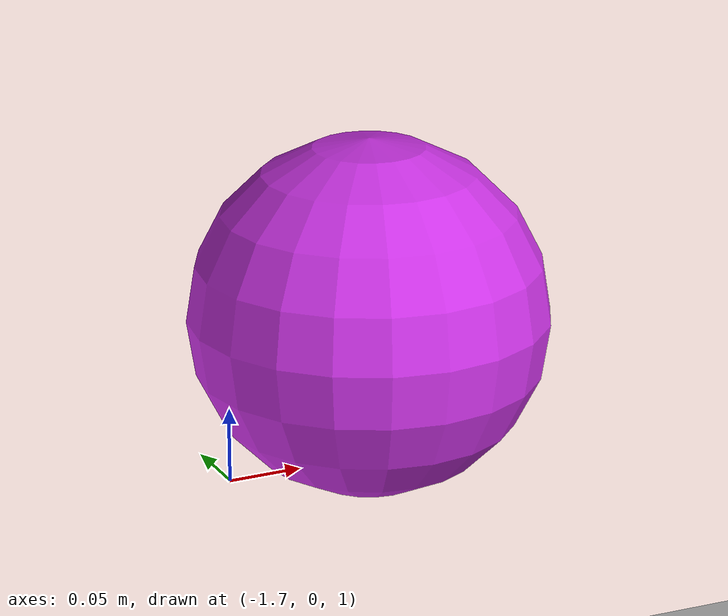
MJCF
<mujoco model="inclined_plane">
  <option timestep="0.04" gravity="0 0 -9.81"/>
  <visual><global offwidth="320" offheight="240"/></visual>
  <worldbody>
    <light pos="0 -4 6"/>
    <camera name="track" pos="4 -7 4" xyaxes="1 0 0 0 0.5 0.87"/>
    <geom name="ramp" type="box" pos="0 0 0.35" euler="0 0.42 0" size="3.0 0.8 0.06" rgba="0.7 0.7 0.7 1" friction="0.4 0.01 0.01"/>
    <body name="ball" pos="-1.6 0 1.1">
      <freejoint name="ball_free"/>
      <geom name="ball_geom" type="sphere" size="0.12" mass="1" rgba="0.8 0.2 0.9 1"/>
    </body>
  </worldbody>
</mujoco>
